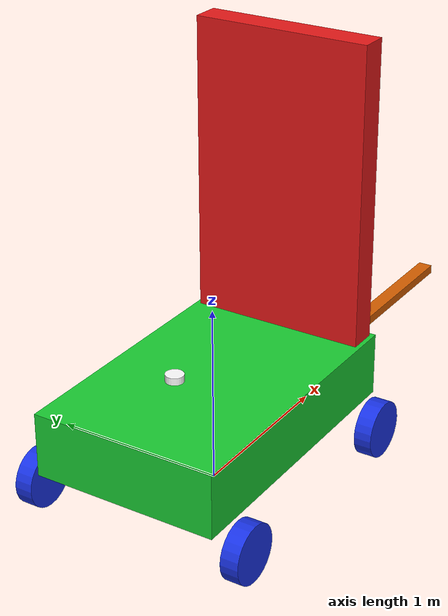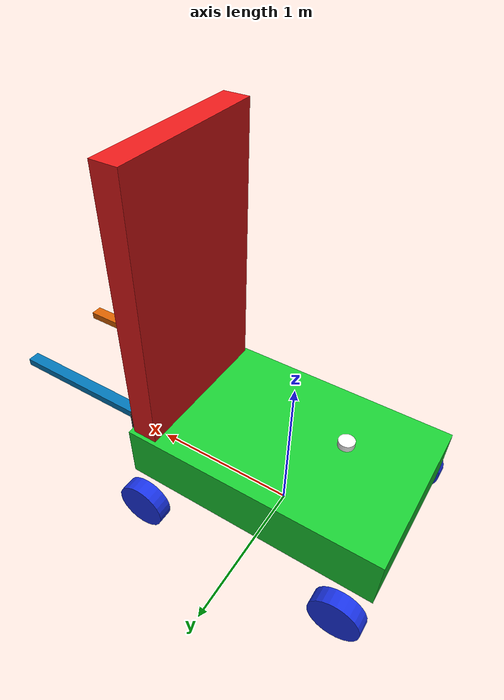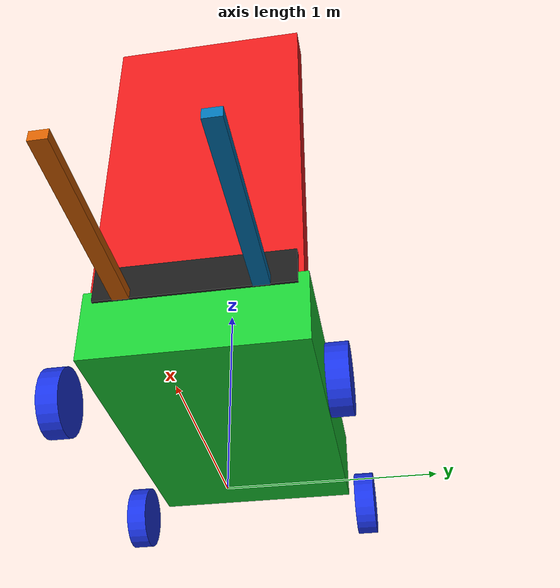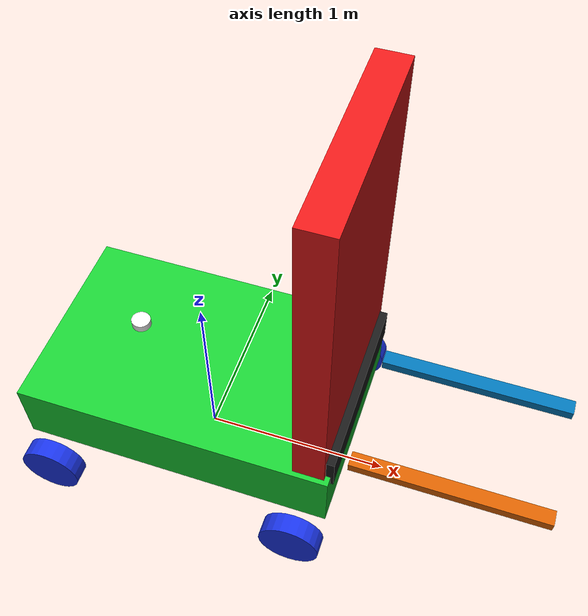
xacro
<?xml version="1.0"?>
<robot xmlns:xacro="http://www.ros.org/wiki/xacro" name="forklift_physics">
  <xacro:arg name="steering_axle" default="rear"/>
  <xacro:arg name="drive_axle" default="front"/>
  <xacro:arg name="controller_config" default=""/>
  <xacro:arg name="payload_mass" default="0.0"/>
  <xacro:arg name="enable_depth_camera" default="false"/>

  <xacro:property name="wheelbase" value="1.35"/>
  <xacro:property name="track_width" value="1.25"/>
  <xacro:property name="wheel_radius" value="0.16"/>
  <xacro:property name="wheel_width" value="0.10"/>
  <xacro:property name="wheel_mass" value="12.0"/>
  <xacro:property name="wheel_z" value="0.0"/>
  <xacro:property name="steer_lower" value="-0.55"/>
  <xacro:property name="steer_upper" value="0.55"/>
  <xacro:property name="steer_velocity" value="0.65"/>

  <xacro:include filename="forklift_common.xacro"/>
  <xacro:include filename="forklift_wheels.xacro"/>
  <xacro:include filename="forklift_ros2_control.xacro"/>

  <xacro:forklift_common_body
    base_link="base_link"
    payload_mass="$(arg payload_mass)"
    enable_depth_camera="$(arg enable_depth_camera)"/>

  <xacro:fixed_wheel
    prefix="left_front"
    parent="base_link"
    x="${wheelbase * 0.5}"
    y="${track_width * 0.5}"
    z="${wheel_z}"
    wheel_radius="${wheel_radius}"
    wheel_width="${wheel_width}"
    wheel_mass="${wheel_mass}"/>
  <xacro:fixed_wheel
    prefix="right_front"
    parent="base_link"
    x="${wheelbase * 0.5}"
    y="${-track_width * 0.5}"
    z="${wheel_z}"
    wheel_radius="${wheel_radius}"
    wheel_width="${wheel_width}"
    wheel_mass="${wheel_mass}"/>

  <xacro:steered_wheel
    prefix="left_rear"
    parent="base_link"
    x="${-wheelbase * 0.5}"
    y="${track_width * 0.5}"
    z="${wheel_z}"
    wheel_radius="${wheel_radius}"
    wheel_width="${wheel_width}"
    wheel_mass="${wheel_mass}"
    steering_lower="${steer_lower}"
    steering_upper="${steer_upper}"
    steering_velocity="${steer_velocity}"/>
  <xacro:steered_wheel
    prefix="right_rear"
    parent="base_link"
    x="${-wheelbase * 0.5}"
    y="${-track_width * 0.5}"
    z="${wheel_z}"
    wheel_radius="${wheel_radius}"
    wheel_width="${wheel_width}"
    wheel_mass="${wheel_mass}"
    steering_lower="${steer_lower}"
    steering_upper="${steer_upper}"
    steering_velocity="${steer_velocity}"/>

  <xacro:forklift_physics_ros2_control controller_config="$(arg controller_config)"/>

  <gazebo reference="base_link">
    <mu1>0.85</mu1>
    <mu2>0.65</mu2>
    <kp>250000.0</kp>
    <kd>80.0</kd>
  </gazebo>
</robot>

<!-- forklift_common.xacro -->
<robot xmlns:xacro="http://www.ros.org/wiki/xacro">
  <xacro:include filename="forklift_inertials.xacro"/>

  <xacro:macro name="forklift_common_body" params="base_link:=base_link chassis_mass:=850.0 payload_mass:=0.0 enable_depth_camera:=true">
    <link name="base_footprint"/>
    <joint name="base_footprint_joint" type="fixed">
      <parent link="base_footprint"/>
      <child link="${base_link}"/>
      <origin xyz="0 0 0.16" rpy="0 0 0"/>
    </joint>

    <link name="${base_link}">
      <visual>
        <origin xyz="0 0 0.30" rpy="0 0 0"/>
        <geometry><box size="1.65 1.05 0.36"/></geometry>
        <material name="green"><color rgba="0.1 0.8 0.2 1.0"/></material>
      </visual>
      <collision>
        <origin xyz="0 0 0.30" rpy="0 0 0"/>
        <geometry><box size="1.65 1.05 0.36"/></geometry>
      </collision>
      <xacro:inertial_box mass="${chassis_mass + payload_mass}" x="1.65" y="1.05" z="0.36">
        <origin xyz="-0.28 0 0.22" rpy="0 0 0"/>
      </xacro:inertial_box>
    </link>

    <link name="mast_link">
      <visual>
        <origin xyz="0 0 0.9" rpy="0 0 0"/>
        <geometry><box size="0.16 1.0 1.8"/></geometry>
        <material name="red"><color rgba="0.9 0.1 0.1 1.0"/></material>
      </visual>
      <collision>
        <origin xyz="0 0 0.9" rpy="0 0 0"/>
        <geometry><box size="0.16 1.0 1.8"/></geometry>
      </collision>
      <xacro:inertial_box mass="90.0" x="0.16" y="1.0" z="1.8">
        <origin xyz="0 0 0.9" rpy="0 0 0"/>
      </xacro:inertial_box>
    </link>
    <joint name="mast_joint" type="fixed">
      <parent link="${base_link}"/>
      <child link="mast_link"/>
      <origin xyz="0.72 0 0.36" rpy="0 0 0"/>
    </joint>

    <link name="fork_carriage_link">
      <visual>
        <origin xyz="0 0 0" rpy="0 0 0"/>
        <geometry><box size="0.08 0.95 0.18"/></geometry>
        <material name="dark_gray"><color rgba="0.1 0.1 0.1 1.0"/></material>
      </visual>
      <collision>
        <geometry><box size="0.08 0.95 0.18"/></geometry>
      </collision>
      <xacro:inertial_box mass="35.0" x="0.08" y="0.95" z="0.18">
        <origin xyz="0 0 0" rpy="0 0 0"/>
      </xacro:inertial_box>
    </link>
    <joint name="fork_base_joint" type="prismatic">
      <parent link="mast_link"/>
      <child link="fork_carriage_link"/>
      <origin xyz="0.08 0 0.15" rpy="0 0 0"/>
      <axis xyz="0 0 1"/>
      <limit lower="0.0" upper="0.8" effort="1000.0" velocity="0.25"/>
      <dynamics damping="10.0" friction="1.0"/>
    </joint>

    <link name="left_fork_link">
      <visual><origin xyz="0.5 0 0" rpy="0 0 0"/><geometry><box size="1.0 0.08 0.05"/></geometry></visual>
      <collision><origin xyz="0.5 0 0" rpy="0 0 0"/><geometry><box size="1.0 0.08 0.05"/></geometry></collision>
      <xacro:inertial_box mass="18.0" x="1.0" y="0.08" z="0.05"><origin xyz="0.5 0 0" rpy="0 0 0"/></xacro:inertial_box>
    </link>
    <joint name="left_fork_joint" type="fixed">
      <parent link="fork_carriage_link"/>
      <child link="left_fork_link"/>
      <origin xyz="0.08 0.32 -0.10" rpy="0 0 0"/>
    </joint>

    <link name="right_fork_link">
      <visual><origin xyz="0.5 0 0" rpy="0 0 0"/><geometry><box size="1.0 0.08 0.05"/></geometry></visual>
      <collision><origin xyz="0.5 0 0" rpy="0 0 0"/><geometry><box size="1.0 0.08 0.05"/></geometry></collision>
      <xacro:inertial_box mass="18.0" x="1.0" y="0.08" z="0.05"><origin xyz="0.5 0 0" rpy="0 0 0"/></xacro:inertial_box>
    </link>
    <joint name="right_fork_joint" type="fixed">
      <parent link="fork_carriage_link"/>
      <child link="right_fork_link"/>
      <origin xyz="0.08 -0.32 -0.10" rpy="0 0 0"/>
    </joint>

    <link name="laser_frame_link">
      <visual>
        <geometry><cylinder radius="0.05" length="0.04"/></geometry>
        <material name="white"><color rgba="1 1 1 1"/></material>
      </visual>
      <collision>
        <geometry><cylinder radius="0.05" length="0.04"/></geometry>
      </collision>
      <xacro:inertial_cylinder mass="0.01" length="0.04" radius="0.05">
        <origin xyz="0 0 0" rpy="0 0 0"/>
      </xacro:inertial_cylinder>
    </link>
    <joint name="laser_frame_joint" type="fixed">
      <parent link="${base_link}"/>
      <child link="laser_frame_link"/>
      <origin xyz="-0.35 0 0.62" rpy="0 0 0"/>
    </joint>
    <gazebo reference="laser_frame_link">
      <sensor name="laser" type="ray">
        <pose>0 0 0 0 0 0</pose>
        <visualize>false</visualize>
        <update_rate>10</update_rate>
        <ray>
          <scan>
            <horizontal>
              <samples>360</samples>
              <min_angle>-3.14</min_angle>
              <max_angle>3.14</max_angle>
            </horizontal>
          </scan>
          <range>
            <min>0.3</min>
            <max>12.0</max>
          </range>
        </ray>
        <plugin name="laser_controller" filename="libgazebo_ros_ray_sensor.so">
          <ros><argument>~/out:=scan</argument></ros>
          <output_type>sensor_msgs/LaserScan</output_type>
          <frame_name>laser_frame_link</frame_name>
        </plugin>
      </sensor>
    </gazebo>

    <xacro:if value="${enable_depth_camera}">
      <link name="camera_link">
        <visual>
          <geometry><box size="0.03 0.04 0.04"/></geometry>
          <material name="white"><color rgba="1 1 1 1"/></material>
        </visual>
      </link>
      <joint name="camera_joint" type="fixed">
        <parent link="${base_link}"/>
        <child link="camera_link"/>
        <origin xyz="0.72 0 0.95" rpy="0 0 0"/>
      </joint>
      <link name="camera_link_optical"/>
      <joint name="camera_optical_joint" type="fixed">
        <parent link="camera_link"/>
        <child link="camera_link_optical"/>
        <origin xyz="0 0 0" rpy="-1.57079632679 0 -1.57079632679"/>
      </joint>
      <gazebo reference="camera_link">
        <sensor name="camera" type="depth">
          <pose>0 0 0 0 0 0</pose>
          <visualize>false</visualize>
          <update_rate>10</update_rate>
          <camera>
            <horizontal_fov>1.089</horizontal_fov>
            <image>
              <format>B8G8R8</format>
              <width>640</width>
              <height>480</height>
            </image>
            <clip>
              <near>0.05</near>
              <far>8.0</far>
            </clip>
          </camera>
          <plugin name="camera_controller" filename="libgazebo_ros_camera.so">
            <frame_name>camera_link_optical</frame_name>
            <min_depth>0.1</min_depth>
            <max_depth>100.0</max_depth>
          </plugin>
        </sensor>
      </gazebo>
    </xacro:if>
  </xacro:macro>
</robot>

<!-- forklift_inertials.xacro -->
<robot xmlns:xacro="http://www.ros.org/wiki/xacro">
  <xacro:include filename="inertial_macros.xacro"/>
</robot>

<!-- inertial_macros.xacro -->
<robot xmlns:xacro="http://www.ros.org/wiki/xacro">
  <xacro:macro name="inertial_box" params="mass x y z *origin">
    <inertial>
      <xacro:insert_block name="origin"/>
      <mass value="${mass}" />
      <inertia
        ixx="${(1.0 / 12.0) * mass * (y * y + z * z)}"
        ixy="0.0"
        ixz="0.0"
        iyy="${(1.0 / 12.0) * mass * (x * x + z * z)}"
        iyz="0.0"
        izz="${(1.0 / 12.0) * mass * (x * x + y * y)}" />
    </inertial>
  </xacro:macro>

  <xacro:macro name="inertial_cylinder" params="mass length radius *origin">
    <inertial>
      <xacro:insert_block name="origin"/>
      <mass value="${mass}" />
      <inertia
        ixx="${(1.0 / 12.0) * mass * (3 * radius * radius + length * length)}"
        ixy="0.0"
        ixz="0.0"
        iyy="${(1.0 / 12.0) * mass * (3 * radius * radius + length * length)}"
        iyz="0.0"
        izz="${0.5 * mass * radius * radius}" />
    </inertial>
  </xacro:macro>
</robot>

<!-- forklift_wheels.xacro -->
<robot xmlns:xacro="http://www.ros.org/wiki/xacro">
  <xacro:macro name="steered_wheel" params="prefix parent x y z wheel_radius wheel_width wheel_mass steering_lower steering_upper steering_velocity drive:=false">
    <link name="${prefix}_steering_link">
      <visual>
        <origin xyz="0 0 0" rpy="0 0 0"/>
        <geometry><box size="0.12 0.08 0.10"/></geometry>
        <material name="dark_gray"><color rgba="0.05 0.05 0.05 1.0"/></material>
      </visual>
      <collision>
        <geometry><box size="0.12 0.08 0.10"/></geometry>
      </collision>
      <xacro:inertial_box mass="2.0" x="0.12" y="0.08" z="0.10">
        <origin xyz="0 0 0" rpy="0 0 0"/>
      </xacro:inertial_box>
    </link>

    <joint name="${prefix}_steering_joint" type="revolute">
      <parent link="${parent}"/>
      <child link="${prefix}_steering_link"/>
      <origin xyz="${x} ${y} ${z}" rpy="0 0 0"/>
      <axis xyz="0 0 1"/>
      <limit lower="${steering_lower}" upper="${steering_upper}" effort="80.0" velocity="${steering_velocity}"/>
      <dynamics damping="8.0" friction="1.0"/>
    </joint>

    <link name="${prefix}_wheel_link">
      <visual>
        <origin xyz="0 0 0" rpy="1.57079632679 0 0"/>
        <geometry><cylinder radius="${wheel_radius}" length="${wheel_width}"/></geometry>
        <material name="blue"><color rgba="0.1 0.2 0.9 1.0"/></material>
      </visual>
      <collision>
        <origin xyz="0 0 0" rpy="1.57079632679 0 0"/>
        <geometry><cylinder radius="${wheel_radius}" length="${wheel_width}"/></geometry>
      </collision>
      <xacro:inertial_cylinder mass="${wheel_mass}" length="${wheel_width}" radius="${wheel_radius}">
        <origin xyz="0 0 0" rpy="1.57079632679 0 0"/>
      </xacro:inertial_cylinder>
    </link>

    <joint name="${prefix}_wheel_rotation_joint" type="continuous">
      <parent link="${prefix}_steering_link"/>
      <child link="${prefix}_wheel_link"/>
      <origin xyz="0 0 0" rpy="0 0 0"/>
      <axis xyz="0 1 0"/>
      <dynamics damping="0.5" friction="0.2"/>
    </joint>

    <gazebo reference="${prefix}_wheel_link">
      <mu1>0.9</mu1>
      <mu2>0.65</mu2>
      <fdir1>1 0 0</fdir1>
      <kp>250000.0</kp>
      <kd>80.0</kd>
      <minDepth>0.0005</minDepth>
      <maxVel>0.05</maxVel>
    </gazebo>
  </xacro:macro>

  <xacro:macro name="fixed_wheel" params="prefix parent x y z wheel_radius wheel_width wheel_mass">
    <link name="${prefix}_wheel_link">
      <visual>
        <origin xyz="0 0 0" rpy="1.57079632679 0 0"/>
        <geometry><cylinder radius="${wheel_radius}" length="${wheel_width}"/></geometry>
        <material name="wheel_blue"><color rgba="0.1 0.2 0.9 1.0"/></material>
      </visual>
      <collision>
        <origin xyz="0 0 0" rpy="1.57079632679 0 0"/>
        <geometry><cylinder radius="${wheel_radius}" length="${wheel_width}"/></geometry>
      </collision>
      <xacro:inertial_cylinder mass="${wheel_mass}" length="${wheel_width}" radius="${wheel_radius}">
        <origin xyz="0 0 0" rpy="1.57079632679 0 0"/>
      </xacro:inertial_cylinder>
    </link>

    <joint name="${prefix}_wheel_rotation_joint" type="continuous">
      <parent link="${parent}"/>
      <child link="${prefix}_wheel_link"/>
      <origin xyz="${x} ${y} ${z}" rpy="0 0 0"/>
      <axis xyz="0 1 0"/>
      <dynamics damping="0.5" friction="0.2"/>
    </joint>

    <gazebo reference="${prefix}_wheel_link">
      <mu1>0.9</mu1>
      <mu2>0.65</mu2>
      <fdir1>1 0 0</fdir1>
      <kp>250000.0</kp>
      <kd>80.0</kd>
      <minDepth>0.0005</minDepth>
      <maxVel>0.05</maxVel>
    </gazebo>
  </xacro:macro>
</robot>
